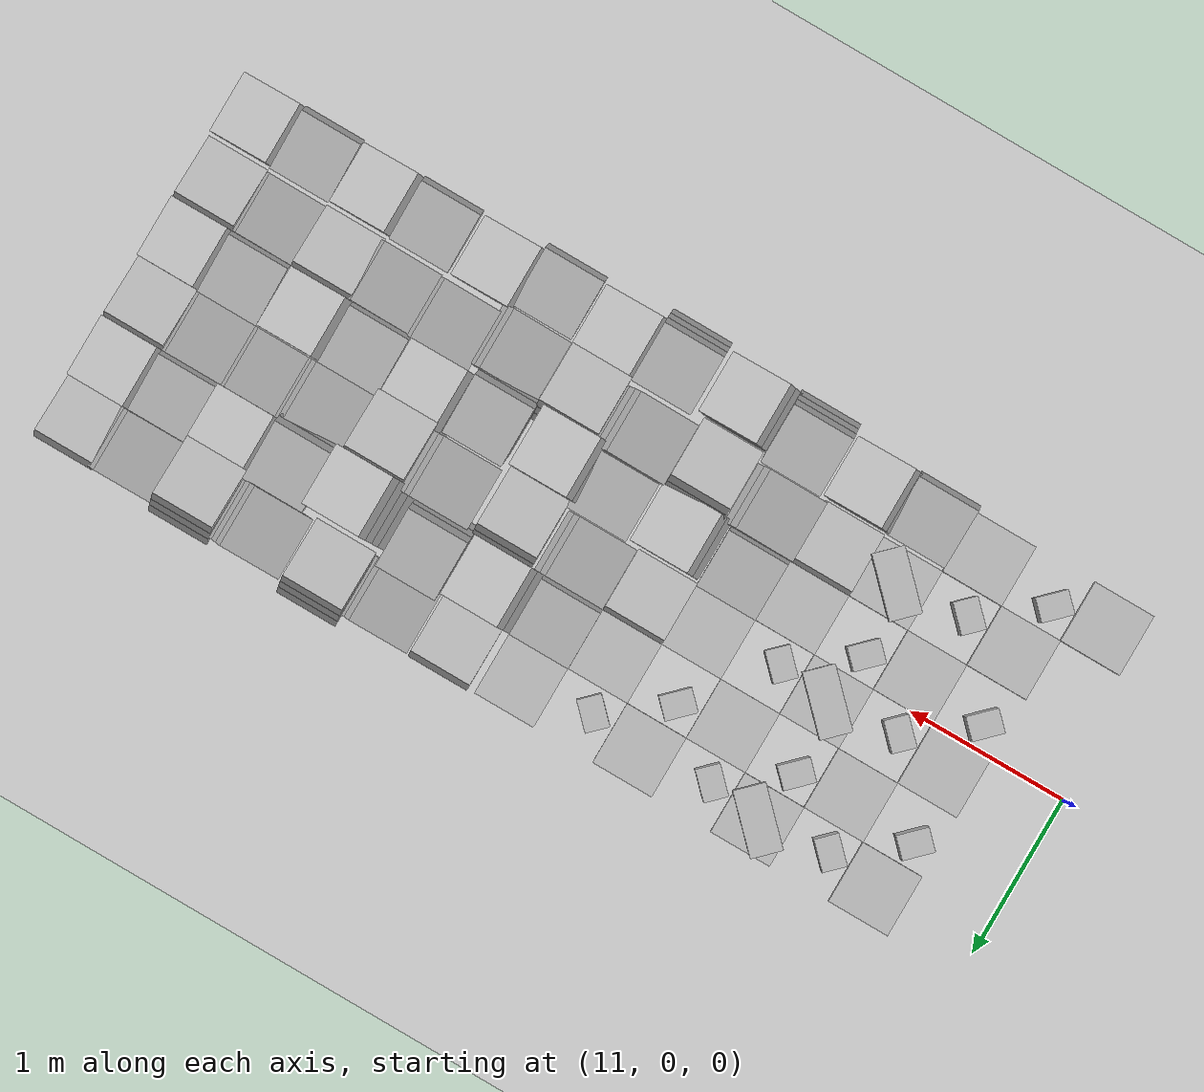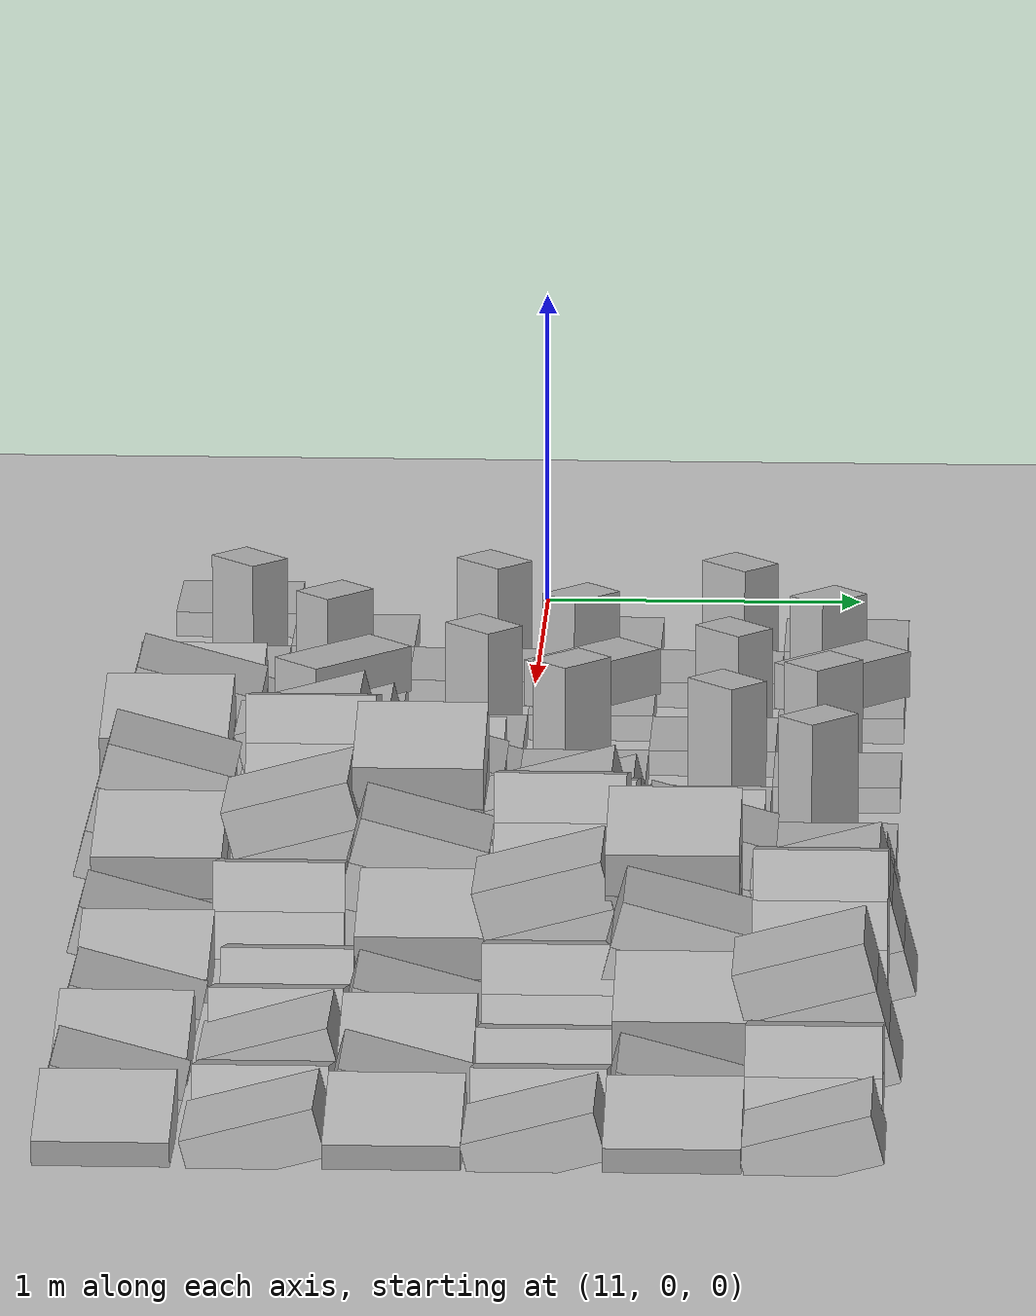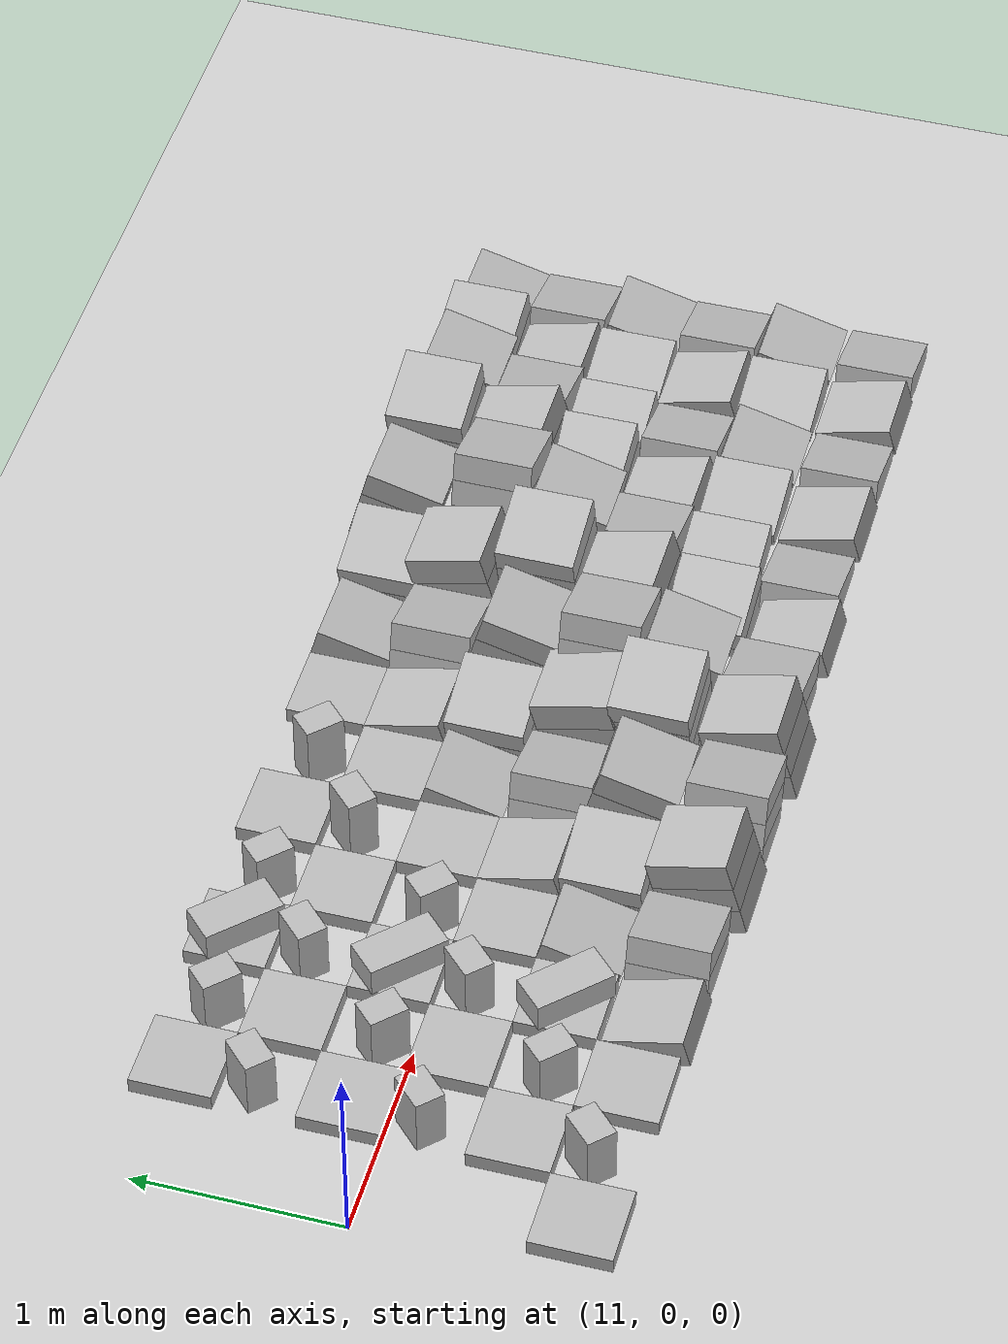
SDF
<sdf version="1.4">
 <world name="trials_task_2">
  <include><uri>model://sun</uri></include>
  <include><uri>model://ground_plane</uri></include>
  <include>
   <name>block_103</name>
   <static>true</static>
   <uri>model://cinder_block_wide</uri>
   <pose>11.277650018 -0.96838389 0 0 0 0</pose>
  </include>
  <include>
   <name>block_104</name>
   <static>true</static>
   <uri>model://cinder_block_wide</uri>
   <pose>11.665003574 0.96838389 0 0 0 0</pose>
  </include>
  <include>
   <name>block_105</name>
   <static>true</static>
   <uri>model://cinder_block_2</uri>
   <pose>11.611883574 0.630184 0.096840 0 1.5707 -0.7854</pose>
  </include>
  <include>
   <name>block_106</name>
   <static>true</static>
   <uri>model://cinder_block_wide</uri>
   <pose>11.665003574 0.193676778 0 0 0 0</pose>
  </include>
  <include>
   <name>block_107</name>
   <static>true</static>
   <uri>model://cinder_block_2</uri>
   <pose>11.611883574 -0.145674 0.096840 0 1.5707 -0.7854</pose>
  </include>
  <include>
   <name>block_108</name>
   <static>true</static>
   <uri>model://cinder_block_wide</uri>
   <pose>11.665003574 -0.581030334 0 0 0 0</pose>
  </include>
  <include>
   <name>block_109</name>
   <static>true</static>
   <uri>model://cinder_block_2</uri>
   <pose>11.611883574 -0.919799 0.096840 0 1.5707 -0.7854</pose>
  </include>
  <include>
   <name>block_110</name>
   <static>true</static>
   <uri>model://cinder_block_2</uri>
   <pose>11.99923713 0.916601 0.096840 0 1.5707 0.7854</pose>
  </include>
  <include>
   <name>block_111</name>
   <static>true</static>
   <uri>model://cinder_block_wide</uri>
   <pose>12.05235713 0.581030334 0 0 0 0</pose>
  </include>
  <include>
   <name>block_112</name>
   <static>true</static>
   <uri>model://cinder_block_2</uri>
   <pose>11.99923713 0.141893888 0.096840 0 1.5707 0.7854</pose>
  </include>
  <include>
   <name>block_113</name>
   <static>true</static>
   <uri>model://cinder_block_wide</uri>
   <pose>12.05235713 -0.193676778 0 0 0 0</pose>
  </include>
  <include>
   <name>block_114</name>
   <static>true</static>
   <uri>model://cinder_block_2</uri>
   <pose>11.99923713 -0.629554 0.096840 0 1.5707 0.7854</pose>
  </include>
  <include>
   <name>block_115</name>
   <static>true</static>
   <uri>model://cinder_block_wide</uri>
   <pose>12.05235713 -0.96838389 0 0 0 0</pose>
  </include>
  <include>
   <name>block_116</name>
   <static>true</static>
   <uri>model://cinder_block_wide</uri>
   <pose>12.439710686 0.96838389 0 0 0 0</pose>
  </include>
  <include>
   <name>block_117</name>
   <static>true</static>
   <uri>model://cinder_block_2</uri>
   <pose>12.439710686 0.96838389 0.142875 0 0 -0.7854</pose>
  </include>
  <include>
   <name>block_118</name>
   <static>true</static>
   <uri>model://cinder_block_2</uri>
   <pose>12.386590686 0.630184 0.096840 0 1.5707 -0.7854</pose>
  </include>
  <include>
   <name>block_119</name>
   <static>true</static>
   <uri>model://cinder_block_wide</uri>
   <pose>12.439710686 0.193676778 0 0 0 0</pose>
  </include>
  <include>
   <name>block_120</name>
   <static>true</static>
   <uri>model://cinder_block_2</uri>
   <pose>12.439710686 0.193676778 0.142875 0 0 -0.7854</pose>
  </include>
  <include>
   <name>block_121</name>
   <static>true</static>
   <uri>model://cinder_block_2</uri>
   <pose>12.386590686 -0.145674 0.096840 0 1.5707 -0.7854</pose>
  </include>
  <include>
   <name>block_122</name>
   <static>true</static>
   <uri>model://cinder_block_wide</uri>
   <pose>12.439710686 -0.581030334 0 0 0 0</pose>
  </include>
  <include>
   <name>block_123</name>
   <static>true</static>
   <uri>model://cinder_block_2</uri>
   <pose>12.439710686 -0.581030334 0.142875 0 0 -0.7854</pose>
  </include>
  <include>
   <name>block_124</name>
   <static>true</static>
   <uri>model://cinder_block_wide</uri>
   <pose>12.439710686 -1.000882 0.050000 -0.261794707 0 0</pose>
  </include>
  <include>
   <name>block_125</name>
   <static>true</static>
   <uri>model://cinder_block_2</uri>
   <pose>12.773944242 0.916601 0.096840 0 1.5707 0.7854</pose>
  </include>
  <include>
   <name>block_126</name>
   <static>true</static>
   <uri>model://cinder_block_wide</uri>
   <pose>12.827064242 0.581030334 0 0 0 0</pose>
  </include>
  <include>
   <name>block_127</name>
   <static>true</static>
   <uri>model://cinder_block_2</uri>
   <pose>12.773944242 0.141893888 0.096840 0 1.5707 0.7854</pose>
  </include>
  <include>
   <name>block_128</name>
   <static>true</static>
   <uri>model://cinder_block_wide</uri>
   <pose>12.827064242 -0.193676778 0 0 0 0</pose>
  </include>
  <include>
   <name>block_129</name>
   <static>true</static>
   <uri>model://cinder_block_wide</uri>
   <pose>12.827064242 -0.581030334 0.050000 0.261794707 0 0</pose>
  </include>
  <model name="angle_double_0">
   <pose>12.843472 -0.996237 0 0 0 -1.570796</pose>
   <include>
    <name>block_130</name>
    <static>true</static>
    <uri>model://cinder_block_wide</uri>
    <pose>0 -0.035859 0.050000 0 0.261794707 1.5707</pose>
   </include>
   <include>
    <name>block_131</name>
    <static>true</static>
    <uri>model://cinder_block_wide</uri>
    <pose>0 0 0.185 0 0.261794707 1.5707</pose>
   </include>
  </model>
  <include>
   <name>block_130</name>
   <static>true</static>
   <uri>model://cinder_block_wide</uri>
   <pose>13.214417798 0.96838389 0 0 0 0</pose>
  </include>
  <include>
   <name>block_131</name>
   <static>true</static>
   <uri>model://cinder_block_2</uri>
   <pose>13.161297798 0.630184 0.141893888 0 1.5707 -0.7854</pose>
  </include>
  <include>
   <name>block_132</name>
   <static>true</static>
   <uri>model://cinder_block_wide</uri>
   <pose>13.214417798 0.193676778 0 0 0 0</pose>
  </include>
  <include>
   <name>block_133</name>
   <static>true</static>
   <uri>model://cinder_block_wide</uri>
   <pose>13.214417798 -0.193676778 0.050000 -0.261794707 0 0</pose>
  </include>
  <model name="angle_double_1">
   <pose>13.214417798 -0.581030334 0 0 0 1.5707</pose>
   <include>
    <name>block_130</name>
    <static>true</static>
    <uri>model://cinder_block_wide</uri>
    <pose>0 -0.035859 0.050000 0 0.261794707 1.5707</pose>
   </include>
   <include>
    <name>block_131</name>
    <static>true</static>
    <uri>model://cinder_block_wide</uri>
    <pose>0 0 0.185 0 0.261794707 1.5707</pose>
   </include>
  </model>
  <model name="angle_triple_0">
   <pose>13.260556 -1.019081 0 0 0 0</pose>
   <include>
    <name>block_0</name>
    <static>true</static>
    <uri>model://cinder_block_wide</uri>
    <pose>0 -0.035859 0.050000 0 0.261794707 1.5707</pose>
   </include>
   <include>
    <name>block_1</name>
    <static>true</static>
    <uri>model://cinder_block_wide</uri>
    <pose>0 0 0.185 0 0.261794707 1.5707</pose>
   </include>
   <include>
    <name>block_2</name>
    <static>true</static>
    <uri>model://cinder_block_wide</uri>
    <pose>0 0.035859 0.32 0 0.261794707 1.5707</pose>
   </include>
  </model>
  <include>
   <name>block_134</name>
   <static>true</static>
   <uri>model://cinder_block_2</uri>
   <pose>13.548651354 0.916601 0.141893888 0 1.5707 0.7854</pose>
  </include>
  <include>
   <name>block_135</name>
   <static>true</static>
   <uri>model://cinder_block_wide</uri>
   <pose>13.601771354 0.581030334 0 0 0 0</pose>
  </include>
  <include>
   <name>block_136</name>
   <static>true</static>
   <uri>model://cinder_block_wide</uri>
   <pose>13.601771354 0.193676778 0.050000 0.261794707 0 0</pose>
  </include>
  <model name="angle_double_2">
   <pose>13.658875 -0.223504 0 0 0 -1.5707</pose>
   <include>
    <name>block_130</name>
    <static>true</static>
    <uri>model://cinder_block_wide</uri>
    <pose>0 -0.035859 0.050000 0 0.261794707 1.5707</pose>
   </include>
   <include>
    <name>block_131</name>
    <static>true</static>
    <uri>model://cinder_block_wide</uri>
    <pose>0 0 0.185 0 0.261794707 1.5707</pose>
   </include>
  </model>
  <model name="angle_triple_1">
   <pose>13.658900 -0.592799 0 0 0 3.141593</pose>
   <include>
    <name>block_0</name>
    <static>true</static>
    <uri>model://cinder_block_wide</uri>
    <pose>0 -0.035859 0.050000 0 0.261794707 1.5707</pose>
   </include>
   <include>
    <name>block_1</name>
    <static>true</static>
    <uri>model://cinder_block_wide</uri>
    <pose>0 0 0.185 0 0.261794707 1.5707</pose>
   </include>
   <include>
    <name>block_2</name>
    <static>true</static>
    <uri>model://cinder_block_wide</uri>
    <pose>0 0.035859 0.32 0 0.261794707 1.5707</pose>
   </include>
  </model>
  <model name="angle_triple_2">
   <pose>13.658900 -1.043964 0 0 0 -1.5707</pose>
   <include>
    <name>block_0</name>
    <static>true</static>
    <uri>model://cinder_block_wide</uri>
    <pose>0 -0.035859 0.050000 0 0.261794707 1.5707</pose>
   </include>
   <include>
    <name>block_1</name>
    <static>true</static>
    <uri>model://cinder_block_wide</uri>
    <pose>0 0 0.185 0 0.261794707 1.5707</pose>
   </include>
   <include>
    <name>block_2</name>
    <static>true</static>
    <uri>model://cinder_block_wide</uri>
    <pose>0 0.035859 0.32 0 0.261794707 1.5707</pose>
   </include>
  </model>
  <include>
   <name>block_137</name>
   <static>true</static>
   <uri>model://cinder_block_wide</uri>
   <pose>13.991107 0.96838389 0 0 0 0</pose>
  </include>
  <include>
   <name>block_138</name>
   <static>true</static>
   <uri>model://cinder_block_wide</uri>
   <pose>13.989828 0.581030334 0.050000 -0.261794707 0 0</pose>
  </include>
  <model name="angle_double_3">
   <pose>14.004845 0.193677 0 0 0 1.570792</pose>
   <include>
    <name>block_130</name>
    <static>true</static>
    <uri>model://cinder_block_wide</uri>
    <pose>0 -0.035859 0.050000 0 0.261794707 1.5707</pose>
   </include>
   <include>
    <name>block_131</name>
    <static>true</static>
    <uri>model://cinder_block_wide</uri>
    <pose>0 0 0.185 0 0.261794707 1.5707</pose>
   </include>
  </model>
  <model name="angle_triple_3">
   <pose>14.073134 -0.246973 0 0 0 0</pose>
   <include>
    <name>block_0</name>
    <static>true</static>
    <uri>model://cinder_block_wide</uri>
    <pose>0 -0.035859 0.050000 0 0.261794707 1.5707</pose>
   </include>
   <include>
    <name>block_1</name>
    <static>true</static>
    <uri>model://cinder_block_wide</uri>
    <pose>0 0 0.185 0 0.261794707 1.5707</pose>
   </include>
   <include>
    <name>block_2</name>
    <static>true</static>
    <uri>model://cinder_block_wide</uri>
    <pose>0 0.035859 0.32 0 0.261794707 1.5707</pose>
   </include>
  </model>
  <model name="angle_quad_0">
   <pose>14.133059 -0.580740 0 0 0 1.570796</pose>
   <include>
    <name>block_0</name>
    <static>true</static>
    <uri>model://cinder_block_wide</uri>
    <pose>0 -0.035859 0.050000 0 0.261794707 1.5707</pose>
   </include>
   <include>
    <name>block_1</name>
    <static>true</static>
    <uri>model://cinder_block_wide</uri>
    <pose>0 0 0.185 0 0.261794707 1.5707</pose>
   </include>
   <include>
    <name>block_2</name>
    <static>true</static>
    <uri>model://cinder_block_wide</uri>
    <pose>0 0.035859 0.32 0 0.261794707 1.5707</pose>
   </include>
   <include>
    <name>block_3</name>
    <static>true</static>
    <uri>model://cinder_block_wide</uri>
    <pose>0 0.071718 0.455 0 0.261794707 1.5707</pose>
   </include>
  </model>
  <model name="angle_triple_4">
   <pose>14.120264 -1.047162 0 0 0 0</pose>
   <include>
    <name>block_0</name>
    <static>true</static>
    <uri>model://cinder_block_wide</uri>
    <pose>0 -0.035859 0.050000 0 0.261794707 1.5707</pose>
   </include>
   <include>
    <name>block_1</name>
    <static>true</static>
    <uri>model://cinder_block_wide</uri>
    <pose>0 0 0.185 0 0.261794707 1.5707</pose>
   </include>
   <include>
    <name>block_2</name>
    <static>true</static>
    <uri>model://cinder_block_wide</uri>
    <pose>0 0.035859 0.32 0 0.261794707 1.5707</pose>
   </include>
  </model>
  <include>
   <name>block_139</name>
   <static>true</static>
   <uri>model://cinder_block_wide</uri>
   <pose>14.422258 0.968384 0.050000 -0.261794707 0 3.141593</pose>
  </include>
  <model name="angle_double_4">
   <pose>14.428994 0.581030 0 0 0 -1.570802</pose>
   <include>
    <name>block_130</name>
    <static>true</static>
    <uri>model://cinder_block_wide</uri>
    <pose>0 -0.035859 0.050000 0 0.261794707 1.5707</pose>
   </include>
   <include>
    <name>block_131</name>
    <static>true</static>
    <uri>model://cinder_block_wide</uri>
    <pose>0 0 0.185 0 0.261794707 1.5707</pose>
   </include>
  </model>
  <model name="angle_triple_5">
   <pose>14.457285 0.193677 0 0 0 3.141593</pose>
   <include>
    <name>block_0</name>
    <static>true</static>
    <uri>model://cinder_block_wide</uri>
    <pose>0 -0.035859 0.050000 0 0.261794707 1.5707</pose>
   </include>
   <include>
    <name>block_1</name>
    <static>true</static>
    <uri>model://cinder_block_wide</uri>
    <pose>0 0 0.185 0 0.261794707 1.5707</pose>
   </include>
   <include>
    <name>block_2</name>
    <static>true</static>
    <uri>model://cinder_block_wide</uri>
    <pose>0 0.035859 0.32 0 0.261794707 1.5707</pose>
   </include>
  </model>
  <model name="angle_quad_1">
   <pose>14.387894 -0.243299 0 0 0 -1.570792</pose>
   <include>
    <name>block_0</name>
    <static>true</static>
    <uri>model://cinder_block_wide</uri>
    <pose>0 -0.035859 0.050000 0 0.261794707 1.5707</pose>
   </include>
   <include>
    <name>block_1</name>
    <static>true</static>
    <uri>model://cinder_block_wide</uri>
    <pose>0 0 0.185 0 0.261794707 1.5707</pose>
   </include>
   <include>
    <name>block_2</name>
    <static>true</static>
    <uri>model://cinder_block_wide</uri>
    <pose>0 0.035859 0.32 0 0.261794707 1.5707</pose>
   </include>
   <include>
    <name>block_3</name>
    <static>true</static>
    <uri>model://cinder_block_wide</uri>
    <pose>0 0.071718 0.455 0 0.261794707 1.5707</pose>
   </include>
  </model>
  <model name="angle_triple_6">
   <pose>14.509392 -0.581030 0 0 0 3.141593</pose>
   <include>
    <name>block_0</name>
    <static>true</static>
    <uri>model://cinder_block_wide</uri>
    <pose>0 -0.035859 0.050000 0 0.261794707 1.5707</pose>
   </include>
   <include>
    <name>block_1</name>
    <static>true</static>
    <uri>model://cinder_block_wide</uri>
    <pose>0 0 0.185 0 0.261794707 1.5707</pose>
   </include>
   <include>
    <name>block_2</name>
    <static>true</static>
    <uri>model://cinder_block_wide</uri>
    <pose>0 0.035859 0.32 0 0.261794707 1.5707</pose>
   </include>
  </model>
  <model name="angle_double_5">
   <pose>14.503903 -1.014587 0 0 0 -1.570802</pose>
   <include>
    <name>block_130</name>
    <static>true</static>
    <uri>model://cinder_block_wide</uri>
    <pose>0 -0.035859 0.050000 0 0.261794707 1.5707</pose>
   </include>
   <include>
    <name>block_131</name>
    <static>true</static>
    <uri>model://cinder_block_wide</uri>
    <pose>0 0 0.185 0 0.261794707 1.5707</pose>
   </include>
  </model>
  <model name="angle_double_6">
   <pose>14.831964 0.968384 0 0 0 1.5707</pose>
   <include>
    <name>block_130</name>
    <static>true</static>
    <uri>model://cinder_block_wide</uri>
    <pose>0 -0.035859 0.050000 0 0.261794707 1.5707</pose>
   </include>
   <include>
    <name>block_131</name>
    <static>true</static>
    <uri>model://cinder_block_wide</uri>
    <pose>0 0 0.185 0 0.261794707 1.5707</pose>
   </include>
  </model>
  <model name="angle_triple_7">
   <pose>14.832 0.581030 0 0 0 0</pose>
   <include>
    <name>block_0</name>
    <static>true</static>
    <uri>model://cinder_block_wide</uri>
    <pose>0 -0.035859 0.050000 0 0.261794707 1.5707</pose>
   </include>
   <include>
    <name>block_1</name>
    <static>true</static>
    <uri>model://cinder_block_wide</uri>
    <pose>0 0 0.185 0 0.261794707 1.5707</pose>
   </include>
   <include>
    <name>block_2</name>
    <static>true</static>
    <uri>model://cinder_block_wide</uri>
    <pose>0 0.035859 0.32 0 0.261794707 1.5707</pose>
   </include>
  </model>
  <model name="angle_quad_2">
   <pose>14.956015 0.193677 0 0 0 1.570802</pose>
   <include>
    <name>block_0</name>
    <static>true</static>
    <uri>model://cinder_block_wide</uri>
    <pose>0 -0.035859 0.050000 0 0.261794707 1.5707</pose>
   </include>
   <include>
    <name>block_1</name>
    <static>true</static>
    <uri>model://cinder_block_wide</uri>
    <pose>0 0 0.185 0 0.261794707 1.5707</pose>
   </include>
   <include>
    <name>block_2</name>
    <static>true</static>
    <uri>model://cinder_block_wide</uri>
    <pose>0 0.035859 0.32 0 0.261794707 1.5707</pose>
   </include>
   <include>
    <name>block_3</name>
    <static>true</static>
    <uri>model://cinder_block_wide</uri>
    <pose>0 0.071718 0.455 0 0.261794707 1.5707</pose>
   </include>
  </model>
  <model name="angle_triple_8">
   <pose>14.890091 -0.255848 0 0 0 0</pose>
   <include>
    <name>block_0</name>
    <static>true</static>
    <uri>model://cinder_block_wide</uri>
    <pose>0 -0.035859 0.050000 0 0.261794707 1.5707</pose>
   </include>
   <include>
    <name>block_1</name>
    <static>true</static>
    <uri>model://cinder_block_wide</uri>
    <pose>0 0 0.185 0 0.261794707 1.5707</pose>
   </include>
   <include>
    <name>block_2</name>
    <static>true</static>
    <uri>model://cinder_block_wide</uri>
    <pose>0 0.035859 0.32 0 0.261794707 1.5707</pose>
   </include>
  </model>
  <model name="angle_double_7">
   <pose>14.917432 -0.628486 0 0 0 1.570792</pose>
   <include>
    <name>block_130</name>
    <static>true</static>
    <uri>model://cinder_block_wide</uri>
    <pose>0 -0.035859 0.050000 0 0.261794707 1.5707</pose>
   </include>
   <include>
    <name>block_131</name>
    <static>true</static>
    <uri>model://cinder_block_wide</uri>
    <pose>0 0 0.185 0 0.261794707 1.5707</pose>
   </include>
  </model>
  <include>
   <name>block_140</name>
   <static>true</static>
   <uri>model://cinder_block_wide</uri>
   <pose>14.919193 -1.044697 0.050000 -0.261794707 0 0</pose>
  </include>
  <model name="angle_triple_9">
   <pose>15.250339 0.997908 0 0 0 3.141593</pose>
   <include>
    <name>block_0</name>
    <static>true</static>
    <uri>model://cinder_block_wide</uri>
    <pose>0 -0.035859 0.050000 0 0.261794707 1.5707</pose>
   </include>
   <include>
    <name>block_1</name>
    <static>true</static>
    <uri>model://cinder_block_wide</uri>
    <pose>0 0 0.185 0 0.261794707 1.5707</pose>
   </include>
   <include>
    <name>block_2</name>
    <static>true</static>
    <uri>model://cinder_block_wide</uri>
    <pose>0 0.035859 0.32 0 0.261794707 1.5707</pose>
   </include>
  </model>
  <model name="angle_quad_3">
   <pose>15.277400 0.533848 0 0 0 -1.570792</pose>
   <include>
    <name>block_0</name>
    <static>true</static>
    <uri>model://cinder_block_wide</uri>
    <pose>0 -0.035859 0.050000 0 0.261794707 1.5707</pose>
   </include>
   <include>
    <name>block_1</name>
    <static>true</static>
    <uri>model://cinder_block_wide</uri>
    <pose>0 0 0.185 0 0.261794707 1.5707</pose>
   </include>
   <include>
    <name>block_2</name>
    <static>true</static>
    <uri>model://cinder_block_wide</uri>
    <pose>0 0.035859 0.32 0 0.261794707 1.5707</pose>
   </include>
   <include>
    <name>block_3</name>
    <static>true</static>
    <uri>model://cinder_block_wide</uri>
    <pose>0 0.071718 0.455 0 0.261794707 1.5707</pose>
   </include>
  </model>
  <model name="angle_triple_10">
   <pose>15.321526 0.194372 0 0 0 3.141593</pose>
   <include>
    <name>block_0</name>
    <static>true</static>
    <uri>model://cinder_block_wide</uri>
    <pose>0 -0.035859 0.050000 0 0.261794707 1.5707</pose>
   </include>
   <include>
    <name>block_1</name>
    <static>true</static>
    <uri>model://cinder_block_wide</uri>
    <pose>0 0 0.185 0 0.261794707 1.5707</pose>
   </include>
   <include>
    <name>block_2</name>
    <static>true</static>
    <uri>model://cinder_block_wide</uri>
    <pose>0 0.035859 0.32 0 0.261794707 1.5707</pose>
   </include>
  </model>
  <model name="angle_double_8">
   <pose>15.300048 -0.193677 0 0 0 -1.570802</pose>
   <include>
    <name>block_130</name>
    <static>true</static>
    <uri>model://cinder_block_wide</uri>
    <pose>0 -0.035859 0.050000 0 0.261794707 1.5707</pose>
   </include>
   <include>
    <name>block_131</name>
    <static>true</static>
    <uri>model://cinder_block_wide</uri>
    <pose>0 0 0.185 0 0.261794707 1.5707</pose>
   </include>
  </model>
  <include>
   <name>block_141</name>
   <static>true</static>
   <uri>model://cinder_block_wide</uri>
   <pose>15.345971 -0.581030 0.050000 -0.261794707 0 1.570796</pose>
  </include>
  <include>
   <name>block_142</name>
   <static>true</static>
   <uri>model://cinder_block_wide</uri>
   <pose>15.298301 -1.007635 0.050000 -0.261794707 0 -1.570796</pose>
  </include>
  <model name="angle_quad_4">
   <pose>15.727742 0.968384 0 0 0 1.570802</pose>
   <include>
    <name>block_0</name>
    <static>true</static>
    <uri>model://cinder_block_wide</uri>
    <pose>0 -0.035859 0.050000 0 0.261794707 1.5707</pose>
   </include>
   <include>
    <name>block_1</name>
    <static>true</static>
    <uri>model://cinder_block_wide</uri>
    <pose>0 0 0.185 0 0.261794707 1.5707</pose>
   </include>
   <include>
    <name>block_2</name>
    <static>true</static>
    <uri>model://cinder_block_wide</uri>
    <pose>0 0.035859 0.32 0 0.261794707 1.5707</pose>
   </include>
   <include>
    <name>block_3</name>
    <static>true</static>
    <uri>model://cinder_block_wide</uri>
    <pose>0 0.071718 0.455 0 0.261794707 1.5707</pose>
   </include>
  </model>
  <model name="angle_triple_11">
   <pose>15.725549 0.537757 0 0 0 0</pose>
   <include>
    <name>block_0</name>
    <static>true</static>
    <uri>model://cinder_block_wide</uri>
    <pose>0 -0.035859 0.050000 0 0.261794707 1.5707</pose>
   </include>
   <include>
    <name>block_1</name>
    <static>true</static>
    <uri>model://cinder_block_wide</uri>
    <pose>0 0 0.185 0 0.261794707 1.5707</pose>
   </include>
   <include>
    <name>block_2</name>
    <static>true</static>
    <uri>model://cinder_block_wide</uri>
    <pose>0 0.035859 0.32 0 0.261794707 1.5707</pose>
   </include>
  </model>
  <model name="angle_double_9">
   <pose>15.725271 0.193677 0 0 0 1.570802</pose>
   <include>
    <name>block_130</name>
    <static>true</static>
    <uri>model://cinder_block_wide</uri>
    <pose>0 -0.035859 0.050000 0 0.261794707 1.5707</pose>
   </include>
   <include>
    <name>block_131</name>
    <static>true</static>
    <uri>model://cinder_block_wide</uri>
    <pose>0 0 0.185 0 0.261794707 1.5707</pose>
   </include>
  </model>
  <include>
   <name>block_143</name>
   <static>true</static>
   <uri>model://cinder_block_wide</uri>
   <pose>15.707617 -0.202207 0.050000 -0.261794707 0 0</pose>
  </include>
  <include>
   <name>block_144</name>
   <static>true</static>
   <uri>model://cinder_block_wide</uri>
   <pose>15.746375 -0.591062 0.050000 -0.261794707 0 1.570796</pose>
  </include>
  <include>
   <name>block_145</name>
   <static>true</static>
   <uri>model://cinder_block_wide</uri>
   <pose>15.715163 -1.016081 0.050000 -0.261794707 0 0</pose>
  </include>
  <model name="angle_triple_12">
   <pose>16.112900 0.968384 0 0 0 3.141593</pose>
   <include>
    <name>block_0</name>
    <static>true</static>
    <uri>model://cinder_block_wide</uri>
    <pose>0 -0.035859 0.050000 0 0.261794707 1.5707</pose>
   </include>
   <include>
    <name>block_1</name>
    <static>true</static>
    <uri>model://cinder_block_wide</uri>
    <pose>0 0 0.185 0 0.261794707 1.5707</pose>
   </include>
   <include>
    <name>block_2</name>
    <static>true</static>
    <uri>model://cinder_block_wide</uri>
    <pose>0 0.035859 0.32 0 0.261794707 1.5707</pose>
   </include>
  </model>
  <model name="angle_double_10">
   <pose>16.112900 0.581030 0 0 0 -1.570792</pose>
   <include>
    <name>block_130</name>
    <static>true</static>
    <uri>model://cinder_block_wide</uri>
    <pose>0 -0.035859 0.050000 0 0.261794707 1.5707</pose>
   </include>
   <include>
    <name>block_131</name>
    <static>true</static>
    <uri>model://cinder_block_wide</uri>
    <pose>0 0 0.185 0 0.261794707 1.5707</pose>
   </include>
  </model>
  <include>
   <name>block_146</name>
   <static>true</static>
   <uri>model://cinder_block_wide</uri>
   <pose>16.112900 0.193677 0.050000 -0.261794707 0 1.570796</pose>
  </include>
  <include>
   <name>block_147</name>
   <static>true</static>
   <uri>model://cinder_block_wide</uri>
   <pose>16.112900 -0.202207 0.050000 -0.261794707 0 -1.570796</pose>
  </include>
  <include>
   <name>block_148</name>
   <static>true</static>
   <uri>model://cinder_block_wide</uri>
   <pose>16.112900 -0.591062 0.050000 -0.261794707 0 -3.141589</pose>
  </include>
  <include>
   <name>block_149</name>
   <static>true</static>
   <uri>model://cinder_block_wide</uri>
   <pose>16.112900 -1.016080 0.050000 -0.261794707 0 -1.570796</pose>
  </include>
  <model name="angle_double_11">
   <pose>16.500256112 0.96838389 0 0 0 1.570792</pose>
   <include>
    <name>block_130</name>
    <static>true</static>
    <uri>model://cinder_block_wide</uri>
    <pose>0 -0.035859 0.050000 0 0.261794707 1.5707</pose>
   </include>
   <include>
    <name>block_131</name>
    <static>true</static>
    <uri>model://cinder_block_wide</uri>
    <pose>0 0 0.185 0 0.261794707 1.5707</pose>
   </include>
  </model>
  <include>
   <name>block_150</name>
   <static>true</static>
   <uri>model://cinder_block_wide</uri>
   <pose>16.500256112 0.581030334 0.050000 -0.261794707 0 0</pose>
  </include>
  <include>
   <name>block_151</name>
   <static>true</static>
   <uri>model://cinder_block_wide</uri>
   <pose>16.500256112 0.193677 0.050000 -0.261794707 0 1.570796</pose>
  </include>
  <include>
   <name>block_152</name>
   <static>true</static>
   <uri>model://cinder_block_wide</uri>
   <pose>16.500256112 -0.202207 0.050000 -0.261794707 0 0</pose>
  </include>
  <include>
   <name>block_153</name>
   <static>true</static>
   <uri>model://cinder_block_wide</uri>
   <pose>16.500256112 -0.591062 0.050000 -0.261794707 0 1.570796</pose>
  </include>
  <include>
   <name>block_154</name>
   <static>true</static>
   <uri>model://cinder_block_wide</uri>
   <pose>16.500256112 -1.016080 0.050000 -0.261794707 0 0</pose>
  </include>
  <include>
   <name>block_155</name>
   <static>true</static>
   <uri>model://cinder_block_wide</uri>
   <pose>16.887609668 0.96838389 0.050000 -0.261794707 0 3.141593</pose>
  </include>
  <include>
   <name>block_156</name>
   <static>true</static>
   <uri>model://cinder_block_wide</uri>
   <pose>16.887609668 0.581030334 0.050000 -0.261794707 0 -1.570796</pose>
  </include>
  <include>
   <name>block_157</name>
   <static>true</static>
   <uri>model://cinder_block_wide</uri>
   <pose>16.887609668 0.193677 0.050000 -0.261794707 0 -3.141593</pose>
  </include>
  <include>
   <name>block_158</name>
   <static>true</static>
   <uri>model://cinder_block_wide</uri>
   <pose>16.887609668 -0.202207 0.050000 -0.261794707 0 -1.570796</pose>
  </include>
  <include>
   <name>block_159</name>
   <static>true</static>
   <uri>model://cinder_block_wide</uri>
   <pose>16.887609668 -0.591062 0.050000 -0.261794707 0 -3.141593</pose>
  </include>
  <include>
   <name>block_160</name>
   <static>true</static>
   <uri>model://cinder_block_wide</uri>
   <pose>16.887609668 -1.016080 0.050000 -0.261794707 0 -1.570796</pose>
  </include>
 </world>
</sdf>
